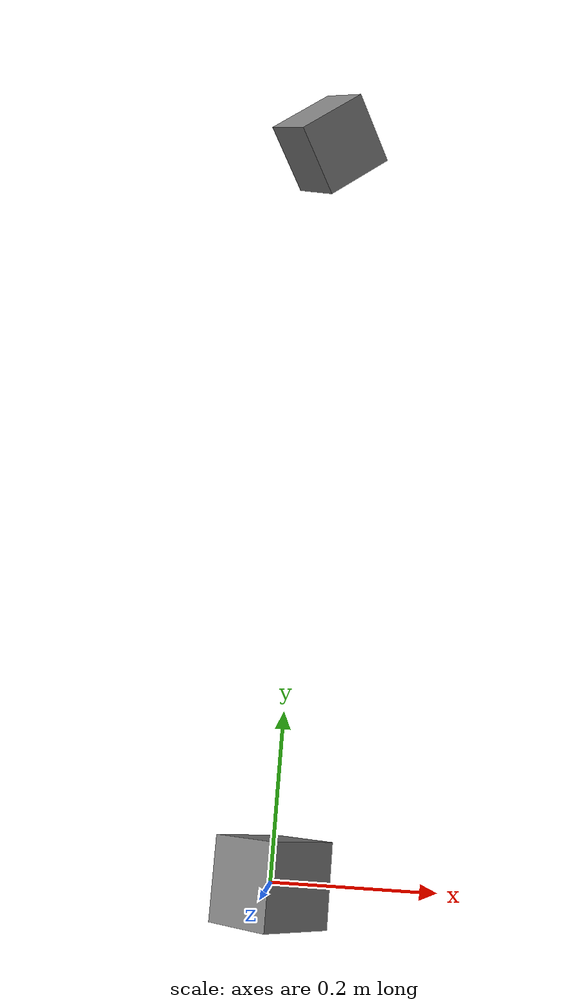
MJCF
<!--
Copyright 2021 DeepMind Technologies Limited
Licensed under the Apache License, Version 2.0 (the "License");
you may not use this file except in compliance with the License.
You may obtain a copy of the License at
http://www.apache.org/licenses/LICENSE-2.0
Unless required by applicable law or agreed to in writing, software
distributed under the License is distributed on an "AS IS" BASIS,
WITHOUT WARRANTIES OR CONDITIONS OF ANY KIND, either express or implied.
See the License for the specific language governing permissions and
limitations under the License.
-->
<mujoco>
  <!--
  the force sensor on body1 should register 2N (for the weight of both bodies).
  body2 is welded to body1 at an offset of 1m, so the torque sensor should register 1Nm.
  -->
  <option gravity="0 0 -1"/>

  <default>
    <!-- A cube of size 0.1^3 with density of 1000 has mass of 1. -->
    <geom size="0.05 0.05 0.05" type="box"/>
  </default>

  <worldbody>
    <body name="body1" euler="0 45 0">
      <geom/>
      <site name="sensor" euler="0 0 90"/>
    </body>
    <body name="body2" pos="0 1 0" euler="30 30 30">
      <joint type="free"/>
      <geom/>
    </body>
  </worldbody>

  <equality>
    <weld body1="body1" body2="body2"/>
  </equality>

  <sensor>
    <force site="sensor" user="0 1.41421356237 1.41421356237"/>
    <torque site="sensor" user="0 -0.70710678118 0.70710678118"/>
  </sensor>
</mujoco>
